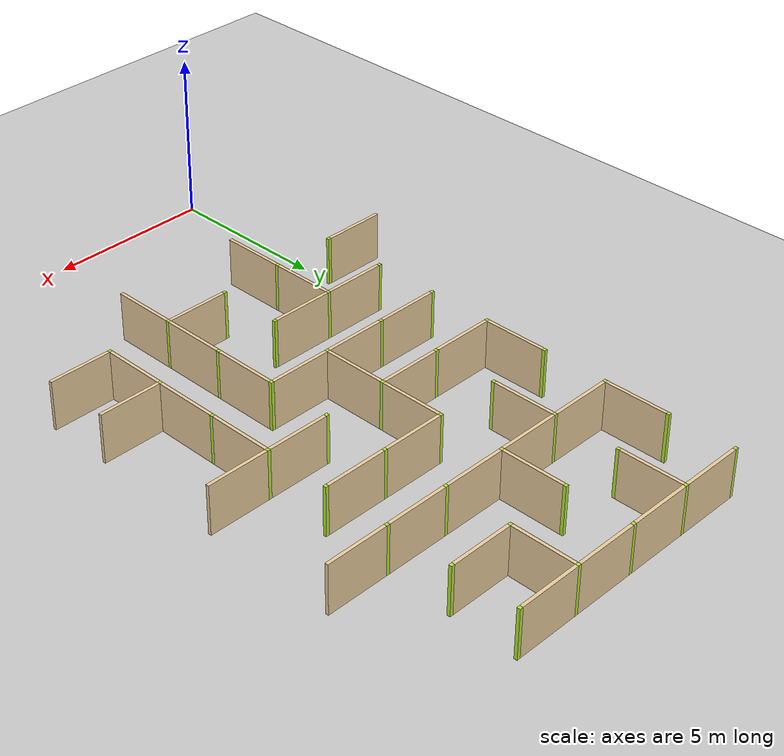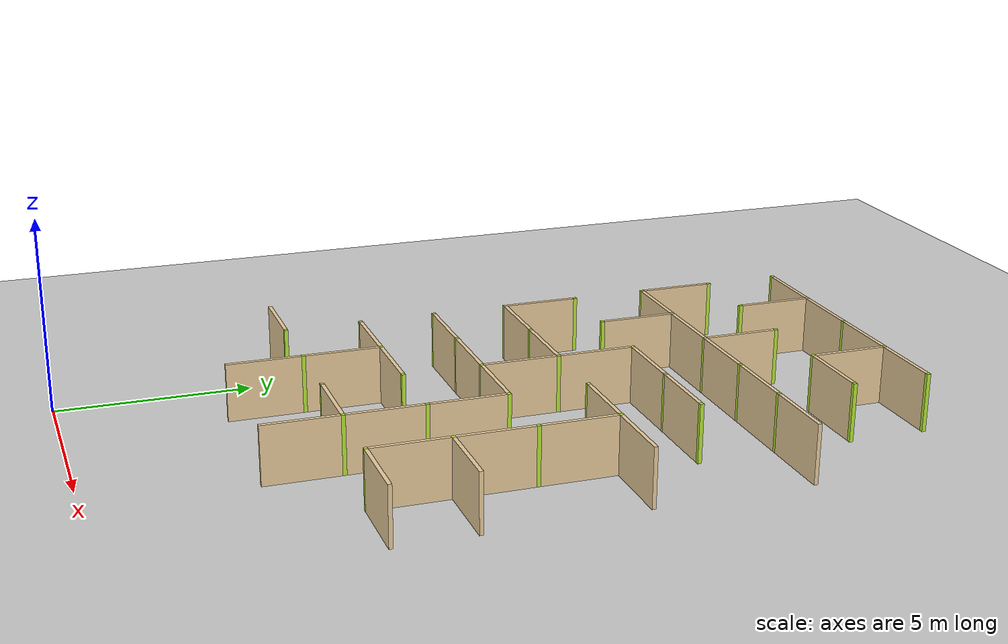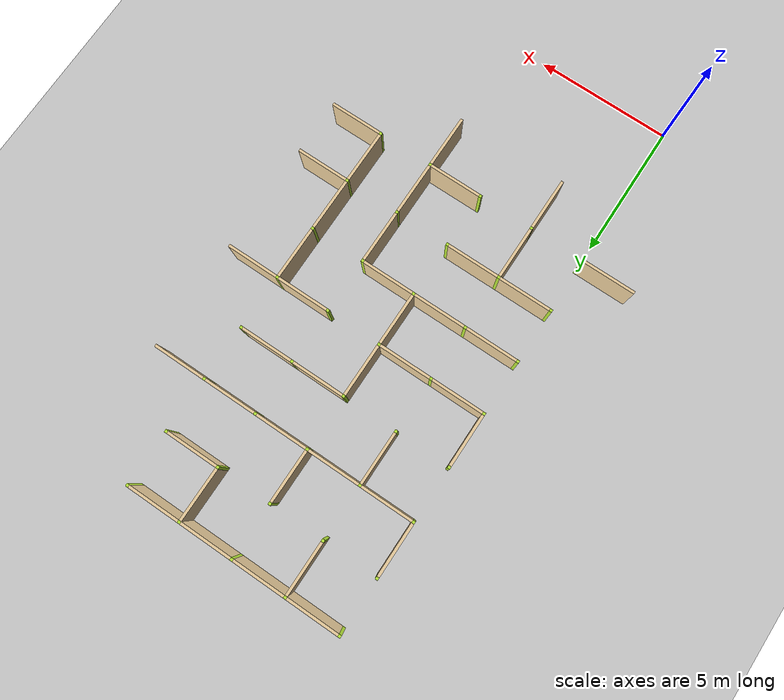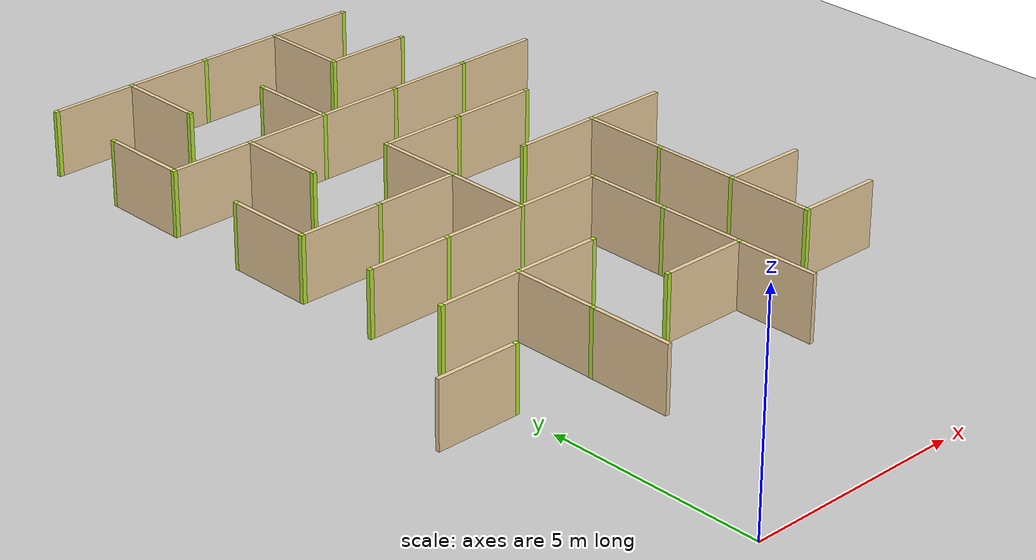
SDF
<sdf version="1.4">
 <world name="maze_world">
  <model name="ground">
   <static>true</static>
   <link name="ground_link">
    <collision name="collision1"><geometry><plane><normal>0 0 1</normal></plane></geometry></collision>
    <visual name="visual1"><geometry><plane><normal>0 0 1</normal><size>100 100</size></plane></geometry></visual>
   </link>
  </model>
  <model name="Untitled">
   <link name="Wall_10_0_h">
    <collision name="Wall_0_Collision">
     <geometry><box><size>1.9 0.1 1.5</size></box></geometry>
     <pose>0 0 0.75 0 -0 0</pose>
    </collision>
    <visual name="Wall_0_Visual">
     <pose>0 0 0.75 0 -0 0</pose>
     <geometry><box><size>1.9 0.1 1.5</size></box></geometry>
     <material>
      <script><uri>file://media/materials/scripts/gazebo.material</uri><name>Gazebo/Grey</name></script>
      <ambient>0.921569 0.807843 0.615686 1</ambient>
     </material>
     <meta><layer>0</layer></meta>
    </visual>
    <pose>1.0 20 0 0 -0 0</pose>
   </link>
   <link name="Joint_0_20">
    <collision name="Wall_2_Collision">
     <geometry><box><size>0.1 0.1 1.5</size></box></geometry>
     <pose>0 0 0.75 0 -0 0</pose>
    </collision>
    <visual name="Wall_2_Visual">
     <pose>0 0 0.75 0 -0 0</pose>
     <geometry><box><size>0.1 0.1 1.5</size></box></geometry>
     <material>
      <script><uri>file://media/materials/scripts/gazebo.material</uri><name>Gazebo/Grey</name></script>
      <ambient>0.721569 0.907843 0.215686 1</ambient>
     </material>
     <meta><layer>0</layer></meta>
    </visual>
    <pose>0 20 0 0 -0 0</pose>
   </link>
   <link name="Wall_11_0_h">
    <collision name="Wall_0_Collision">
     <geometry><box><size>1.9 0.1 1.5</size></box></geometry>
     <pose>0 0 0.75 0 -0 0</pose>
    </collision>
    <visual name="Wall_0_Visual">
     <pose>0 0 0.75 0 -0 0</pose>
     <geometry><box><size>1.9 0.1 1.5</size></box></geometry>
     <material>
      <script><uri>file://media/materials/scripts/gazebo.material</uri><name>Gazebo/Grey</name></script>
      <ambient>0.921569 0.807843 0.615686 1</ambient>
     </material>
     <meta><layer>0</layer></meta>
    </visual>
    <pose>3.0 20 0 0 -0 0</pose>
   </link>
   <link name="Wall_11_0_v">
    <collision name="Wall_0_Collision">
     <geometry><box><size>1.9 0.1 1.5</size></box></geometry>
     <pose>0 0 0.75 0 -0 0</pose>
    </collision>
    <visual name="Wall_0_Visual">
     <pose>0 0 0.75 0 -0 0</pose>
     <geometry><box><size>1.9 0.1 1.5</size></box></geometry>
     <material>
      <script><uri>file://media/materials/scripts/gazebo.material</uri><name>Gazebo/Grey</name></script>
      <ambient>0.921569 0.807843 0.615686 1</ambient>
     </material>
     <meta><layer>0</layer></meta>
    </visual>
    <pose>2 19.0 0 0 -0 1.5708</pose>
   </link>
   <link name="Joint_2_20">
    <collision name="Wall_2_Collision">
     <geometry><box><size>0.1 0.1 1.5</size></box></geometry>
     <pose>0 0 0.75 0 -0 0</pose>
    </collision>
    <visual name="Wall_2_Visual">
     <pose>0 0 0.75 0 -0 0</pose>
     <geometry><box><size>0.1 0.1 1.5</size></box></geometry>
     <material>
      <script><uri>file://media/materials/scripts/gazebo.material</uri><name>Gazebo/Grey</name></script>
      <ambient>0.721569 0.907843 0.215686 1</ambient>
     </material>
     <meta><layer>0</layer></meta>
    </visual>
    <pose>2 20 0 0 -0 0</pose>
   </link>
   <link name="Wall_12_0_h">
    <collision name="Wall_0_Collision">
     <geometry><box><size>1.9 0.1 1.5</size></box></geometry>
     <pose>0 0 0.75 0 -0 0</pose>
    </collision>
    <visual name="Wall_0_Visual">
     <pose>0 0 0.75 0 -0 0</pose>
     <geometry><box><size>1.9 0.1 1.5</size></box></geometry>
     <material>
      <script><uri>file://media/materials/scripts/gazebo.material</uri><name>Gazebo/Grey</name></script>
      <ambient>0.921569 0.807843 0.615686 1</ambient>
     </material>
     <meta><layer>0</layer></meta>
    </visual>
    <pose>5.0 20 0 0 -0 0</pose>
   </link>
   <link name="Joint_4_20">
    <collision name="Wall_2_Collision">
     <geometry><box><size>0.1 0.1 1.5</size></box></geometry>
     <pose>0 0 0.75 0 -0 0</pose>
    </collision>
    <visual name="Wall_2_Visual">
     <pose>0 0 0.75 0 -0 0</pose>
     <geometry><box><size>0.1 0.1 1.5</size></box></geometry>
     <material>
      <script><uri>file://media/materials/scripts/gazebo.material</uri><name>Gazebo/Grey</name></script>
      <ambient>0.721569 0.907843 0.215686 1</ambient>
     </material>
     <meta><layer>0</layer></meta>
    </visual>
    <pose>4 20 0 0 -0 0</pose>
   </link>
   <link name="Wall_13_0_h">
    <collision name="Wall_0_Collision">
     <geometry><box><size>1.9 0.1 1.5</size></box></geometry>
     <pose>0 0 0.75 0 -0 0</pose>
    </collision>
    <visual name="Wall_0_Visual">
     <pose>0 0 0.75 0 -0 0</pose>
     <geometry><box><size>1.9 0.1 1.5</size></box></geometry>
     <material>
      <script><uri>file://media/materials/scripts/gazebo.material</uri><name>Gazebo/Grey</name></script>
      <ambient>0.921569 0.807843 0.615686 1</ambient>
     </material>
     <meta><layer>0</layer></meta>
    </visual>
    <pose>7.0 20 0 0 -0 0</pose>
   </link>
   <link name="Wall_13_0_v">
    <collision name="Wall_0_Collision">
     <geometry><box><size>1.9 0.1 1.5</size></box></geometry>
     <pose>0 0 0.75 0 -0 0</pose>
    </collision>
    <visual name="Wall_0_Visual">
     <pose>0 0 0.75 0 -0 0</pose>
     <geometry><box><size>1.9 0.1 1.5</size></box></geometry>
     <material>
      <script><uri>file://media/materials/scripts/gazebo.material</uri><name>Gazebo/Grey</name></script>
      <ambient>0.921569 0.807843 0.615686 1</ambient>
     </material>
     <meta><layer>0</layer></meta>
    </visual>
    <pose>6 19.0 0 0 -0 1.5708</pose>
   </link>
   <link name="Joint_6_20">
    <collision name="Wall_2_Collision">
     <geometry><box><size>0.1 0.1 1.5</size></box></geometry>
     <pose>0 0 0.75 0 -0 0</pose>
    </collision>
    <visual name="Wall_2_Visual">
     <pose>0 0 0.75 0 -0 0</pose>
     <geometry><box><size>0.1 0.1 1.5</size></box></geometry>
     <material>
      <script><uri>file://media/materials/scripts/gazebo.material</uri><name>Gazebo/Grey</name></script>
      <ambient>0.721569 0.907843 0.215686 1</ambient>
     </material>
     <meta><layer>0</layer></meta>
    </visual>
    <pose>6 20 0 0 -0 0</pose>
   </link>
   <link name="Joint_8_20">
    <collision name="Wall_2_Collision">
     <geometry><box><size>0.1 0.1 1.5</size></box></geometry>
     <pose>0 0 0.75 0 -0 0</pose>
    </collision>
    <visual name="Wall_2_Visual">
     <pose>0 0 0.75 0 -0 0</pose>
     <geometry><box><size>0.1 0.1 1.5</size></box></geometry>
     <material>
      <script><uri>file://media/materials/scripts/gazebo.material</uri><name>Gazebo/Grey</name></script>
      <ambient>0.721569 0.907843 0.215686 1</ambient>
     </material>
     <meta><layer>0</layer></meta>
    </visual>
    <pose>8 20 0 0 -0 0</pose>
   </link>
   <link name="Wall_10_1_v">
    <collision name="Wall_0_Collision">
     <geometry><box><size>1.9 0.1 1.5</size></box></geometry>
     <pose>0 0 0.75 0 -0 0</pose>
    </collision>
    <visual name="Wall_0_Visual">
     <pose>0 0 0.75 0 -0 0</pose>
     <geometry><box><size>1.9 0.1 1.5</size></box></geometry>
     <material>
      <script><uri>file://media/materials/scripts/gazebo.material</uri><name>Gazebo/Grey</name></script>
      <ambient>0.921569 0.807843 0.615686 1</ambient>
     </material>
     <meta><layer>0</layer></meta>
    </visual>
    <pose>0 17.0 0 0 -0 1.5708</pose>
   </link>
   <link name="Joint_0_18">
    <collision name="Wall_2_Collision">
     <geometry><box><size>0.1 0.1 1.5</size></box></geometry>
     <pose>0 0 0.75 0 -0 0</pose>
    </collision>
    <visual name="Wall_2_Visual">
     <pose>0 0 0.75 0 -0 0</pose>
     <geometry><box><size>0.1 0.1 1.5</size></box></geometry>
     <material>
      <script><uri>file://media/materials/scripts/gazebo.material</uri><name>Gazebo/Grey</name></script>
      <ambient>0.721569 0.907843 0.215686 1</ambient>
     </material>
     <meta><layer>0</layer></meta>
    </visual>
    <pose>0 18 0 0 -0 0</pose>
   </link>
   <link name="Joint_2_18">
    <collision name="Wall_2_Collision">
     <geometry><box><size>0.1 0.1 1.5</size></box></geometry>
     <pose>0 0 0.75 0 -0 0</pose>
    </collision>
    <visual name="Wall_2_Visual">
     <pose>0 0 0.75 0 -0 0</pose>
     <geometry><box><size>0.1 0.1 1.5</size></box></geometry>
     <material>
      <script><uri>file://media/materials/scripts/gazebo.material</uri><name>Gazebo/Grey</name></script>
      <ambient>0.721569 0.907843 0.215686 1</ambient>
     </material>
     <meta><layer>0</layer></meta>
    </visual>
    <pose>2 18 0 0 -0 0</pose>
   </link>
   <link name="Wall_12_1_v">
    <collision name="Wall_0_Collision">
     <geometry><box><size>1.9 0.1 1.5</size></box></geometry>
     <pose>0 0 0.75 0 -0 0</pose>
    </collision>
    <visual name="Wall_0_Visual">
     <pose>0 0 0.75 0 -0 0</pose>
     <geometry><box><size>1.9 0.1 1.5</size></box></geometry>
     <material>
      <script><uri>file://media/materials/scripts/gazebo.material</uri><name>Gazebo/Grey</name></script>
      <ambient>0.921569 0.807843 0.615686 1</ambient>
     </material>
     <meta><layer>0</layer></meta>
    </visual>
    <pose>4 17.0 0 0 -0 1.5708</pose>
   </link>
   <link name="Joint_4_18">
    <collision name="Wall_2_Collision">
     <geometry><box><size>0.1 0.1 1.5</size></box></geometry>
     <pose>0 0 0.75 0 -0 0</pose>
    </collision>
    <visual name="Wall_2_Visual">
     <pose>0 0 0.75 0 -0 0</pose>
     <geometry><box><size>0.1 0.1 1.5</size></box></geometry>
     <material>
      <script><uri>file://media/materials/scripts/gazebo.material</uri><name>Gazebo/Grey</name></script>
      <ambient>0.721569 0.907843 0.215686 1</ambient>
     </material>
     <meta><layer>0</layer></meta>
    </visual>
    <pose>4 18 0 0 -0 0</pose>
   </link>
   <link name="Wall_13_1_h">
    <collision name="Wall_0_Collision">
     <geometry><box><size>1.9 0.1 1.5</size></box></geometry>
     <pose>0 0 0.75 0 -0 0</pose>
    </collision>
    <visual name="Wall_0_Visual">
     <pose>0 0 0.75 0 -0 0</pose>
     <geometry><box><size>1.9 0.1 1.5</size></box></geometry>
     <material>
      <script><uri>file://media/materials/scripts/gazebo.material</uri><name>Gazebo/Grey</name></script>
      <ambient>0.921569 0.807843 0.615686 1</ambient>
     </material>
     <meta><layer>0</layer></meta>
    </visual>
    <pose>7.0 18 0 0 -0 0</pose>
   </link>
   <link name="Joint_6_18">
    <collision name="Wall_2_Collision">
     <geometry><box><size>0.1 0.1 1.5</size></box></geometry>
     <pose>0 0 0.75 0 -0 0</pose>
    </collision>
    <visual name="Wall_2_Visual">
     <pose>0 0 0.75 0 -0 0</pose>
     <geometry><box><size>0.1 0.1 1.5</size></box></geometry>
     <material>
      <script><uri>file://media/materials/scripts/gazebo.material</uri><name>Gazebo/Grey</name></script>
      <ambient>0.721569 0.907843 0.215686 1</ambient>
     </material>
     <meta><layer>0</layer></meta>
    </visual>
    <pose>6 18 0 0 -0 0</pose>
   </link>
   <link name="Joint_8_18">
    <collision name="Wall_2_Collision">
     <geometry><box><size>0.1 0.1 1.5</size></box></geometry>
     <pose>0 0 0.75 0 -0 0</pose>
    </collision>
    <visual name="Wall_2_Visual">
     <pose>0 0 0.75 0 -0 0</pose>
     <geometry><box><size>0.1 0.1 1.5</size></box></geometry>
     <material>
      <script><uri>file://media/materials/scripts/gazebo.material</uri><name>Gazebo/Grey</name></script>
      <ambient>0.721569 0.907843 0.215686 1</ambient>
     </material>
     <meta><layer>0</layer></meta>
    </visual>
    <pose>8 18 0 0 -0 0</pose>
   </link>
   <link name="Wall_10_2_h">
    <collision name="Wall_0_Collision">
     <geometry><box><size>1.9 0.1 1.5</size></box></geometry>
     <pose>0 0 0.75 0 -0 0</pose>
    </collision>
    <visual name="Wall_0_Visual">
     <pose>0 0 0.75 0 -0 0</pose>
     <geometry><box><size>1.9 0.1 1.5</size></box></geometry>
     <material>
      <script><uri>file://media/materials/scripts/gazebo.material</uri><name>Gazebo/Grey</name></script>
      <ambient>0.921569 0.807843 0.615686 1</ambient>
     </material>
     <meta><layer>0</layer></meta>
    </visual>
    <pose>1.0 16 0 0 -0 0</pose>
   </link>
   <link name="Joint_0_16">
    <collision name="Wall_2_Collision">
     <geometry><box><size>0.1 0.1 1.5</size></box></geometry>
     <pose>0 0 0.75 0 -0 0</pose>
    </collision>
    <visual name="Wall_2_Visual">
     <pose>0 0 0.75 0 -0 0</pose>
     <geometry><box><size>0.1 0.1 1.5</size></box></geometry>
     <material>
      <script><uri>file://media/materials/scripts/gazebo.material</uri><name>Gazebo/Grey</name></script>
      <ambient>0.721569 0.907843 0.215686 1</ambient>
     </material>
     <meta><layer>0</layer></meta>
    </visual>
    <pose>0 16 0 0 -0 0</pose>
   </link>
   <link name="Wall_11_2_h">
    <collision name="Wall_0_Collision">
     <geometry><box><size>1.9 0.1 1.5</size></box></geometry>
     <pose>0 0 0.75 0 -0 0</pose>
    </collision>
    <visual name="Wall_0_Visual">
     <pose>0 0 0.75 0 -0 0</pose>
     <geometry><box><size>1.9 0.1 1.5</size></box></geometry>
     <material>
      <script><uri>file://media/materials/scripts/gazebo.material</uri><name>Gazebo/Grey</name></script>
      <ambient>0.921569 0.807843 0.615686 1</ambient>
     </material>
     <meta><layer>0</layer></meta>
    </visual>
    <pose>3.0 16 0 0 -0 0</pose>
   </link>
   <link name="Wall_11_2_v">
    <collision name="Wall_0_Collision">
     <geometry><box><size>1.9 0.1 1.5</size></box></geometry>
     <pose>0 0 0.75 0 -0 0</pose>
    </collision>
    <visual name="Wall_0_Visual">
     <pose>0 0 0.75 0 -0 0</pose>
     <geometry><box><size>1.9 0.1 1.5</size></box></geometry>
     <material>
      <script><uri>file://media/materials/scripts/gazebo.material</uri><name>Gazebo/Grey</name></script>
      <ambient>0.921569 0.807843 0.615686 1</ambient>
     </material>
     <meta><layer>0</layer></meta>
    </visual>
    <pose>2 15.0 0 0 -0 1.5708</pose>
   </link>
   <link name="Joint_2_16">
    <collision name="Wall_2_Collision">
     <geometry><box><size>0.1 0.1 1.5</size></box></geometry>
     <pose>0 0 0.75 0 -0 0</pose>
    </collision>
    <visual name="Wall_2_Visual">
     <pose>0 0 0.75 0 -0 0</pose>
     <geometry><box><size>0.1 0.1 1.5</size></box></geometry>
     <material>
      <script><uri>file://media/materials/scripts/gazebo.material</uri><name>Gazebo/Grey</name></script>
      <ambient>0.721569 0.907843 0.215686 1</ambient>
     </material>
     <meta><layer>0</layer></meta>
    </visual>
    <pose>2 16 0 0 -0 0</pose>
   </link>
   <link name="Wall_12_2_h">
    <collision name="Wall_0_Collision">
     <geometry><box><size>1.9 0.1 1.5</size></box></geometry>
     <pose>0 0 0.75 0 -0 0</pose>
    </collision>
    <visual name="Wall_0_Visual">
     <pose>0 0 0.75 0 -0 0</pose>
     <geometry><box><size>1.9 0.1 1.5</size></box></geometry>
     <material>
      <script><uri>file://media/materials/scripts/gazebo.material</uri><name>Gazebo/Grey</name></script>
      <ambient>0.921569 0.807843 0.615686 1</ambient>
     </material>
     <meta><layer>0</layer></meta>
    </visual>
    <pose>5.0 16 0 0 -0 0</pose>
   </link>
   <link name="Joint_4_16">
    <collision name="Wall_2_Collision">
     <geometry><box><size>0.1 0.1 1.5</size></box></geometry>
     <pose>0 0 0.75 0 -0 0</pose>
    </collision>
    <visual name="Wall_2_Visual">
     <pose>0 0 0.75 0 -0 0</pose>
     <geometry><box><size>0.1 0.1 1.5</size></box></geometry>
     <material>
      <script><uri>file://media/materials/scripts/gazebo.material</uri><name>Gazebo/Grey</name></script>
      <ambient>0.721569 0.907843 0.215686 1</ambient>
     </material>
     <meta><layer>0</layer></meta>
    </visual>
    <pose>4 16 0 0 -0 0</pose>
   </link>
   <link name="Wall_13_2_h">
    <collision name="Wall_0_Collision">
     <geometry><box><size>1.9 0.1 1.5</size></box></geometry>
     <pose>0 0 0.75 0 -0 0</pose>
    </collision>
    <visual name="Wall_0_Visual">
     <pose>0 0 0.75 0 -0 0</pose>
     <geometry><box><size>1.9 0.1 1.5</size></box></geometry>
     <material>
      <script><uri>file://media/materials/scripts/gazebo.material</uri><name>Gazebo/Grey</name></script>
      <ambient>0.921569 0.807843 0.615686 1</ambient>
     </material>
     <meta><layer>0</layer></meta>
    </visual>
    <pose>7.0 16 0 0 -0 0</pose>
   </link>
   <link name="Joint_6_16">
    <collision name="Wall_2_Collision">
     <geometry><box><size>0.1 0.1 1.5</size></box></geometry>
     <pose>0 0 0.75 0 -0 0</pose>
    </collision>
    <visual name="Wall_2_Visual">
     <pose>0 0 0.75 0 -0 0</pose>
     <geometry><box><size>0.1 0.1 1.5</size></box></geometry>
     <material>
      <script><uri>file://media/materials/scripts/gazebo.material</uri><name>Gazebo/Grey</name></script>
      <ambient>0.721569 0.907843 0.215686 1</ambient>
     </material>
     <meta><layer>0</layer></meta>
    </visual>
    <pose>6 16 0 0 -0 0</pose>
   </link>
   <link name="Wall_14_2_h">
    <collision name="Wall_0_Collision">
     <geometry><box><size>1.9 0.1 1.5</size></box></geometry>
     <pose>0 0 0.75 0 -0 0</pose>
    </collision>
    <visual name="Wall_0_Visual">
     <pose>0 0 0.75 0 -0 0</pose>
     <geometry><box><size>1.9 0.1 1.5</size></box></geometry>
     <material>
      <script><uri>file://media/materials/scripts/gazebo.material</uri><name>Gazebo/Grey</name></script>
      <ambient>0.921569 0.807843 0.615686 1</ambient>
     </material>
     <meta><layer>0</layer></meta>
    </visual>
    <pose>9.0 16 0 0 -0 0</pose>
   </link>
   <link name="Joint_8_16">
    <collision name="Wall_2_Collision">
     <geometry><box><size>0.1 0.1 1.5</size></box></geometry>
     <pose>0 0 0.75 0 -0 0</pose>
    </collision>
    <visual name="Wall_2_Visual">
     <pose>0 0 0.75 0 -0 0</pose>
     <geometry><box><size>0.1 0.1 1.5</size></box></geometry>
     <material>
      <script><uri>file://media/materials/scripts/gazebo.material</uri><name>Gazebo/Grey</name></script>
      <ambient>0.721569 0.907843 0.215686 1</ambient>
     </material>
     <meta><layer>0</layer></meta>
    </visual>
    <pose>8 16 0 0 -0 0</pose>
   </link>
   <link name="Wall_10_3_v">
    <collision name="Wall_0_Collision">
     <geometry><box><size>1.9 0.1 1.5</size></box></geometry>
     <pose>0 0 0.75 0 -0 0</pose>
    </collision>
    <visual name="Wall_0_Visual">
     <pose>0 0 0.75 0 -0 0</pose>
     <geometry><box><size>1.9 0.1 1.5</size></box></geometry>
     <material>
      <script><uri>file://media/materials/scripts/gazebo.material</uri><name>Gazebo/Grey</name></script>
      <ambient>0.921569 0.807843 0.615686 1</ambient>
     </material>
     <meta><layer>0</layer></meta>
    </visual>
    <pose>0 13.0 0 0 -0 1.5708</pose>
   </link>
   <link name="Joint_0_14">
    <collision name="Wall_2_Collision">
     <geometry><box><size>0.1 0.1 1.5</size></box></geometry>
     <pose>0 0 0.75 0 -0 0</pose>
    </collision>
    <visual name="Wall_2_Visual">
     <pose>0 0 0.75 0 -0 0</pose>
     <geometry><box><size>0.1 0.1 1.5</size></box></geometry>
     <material>
      <script><uri>file://media/materials/scripts/gazebo.material</uri><name>Gazebo/Grey</name></script>
      <ambient>0.721569 0.907843 0.215686 1</ambient>
     </material>
     <meta><layer>0</layer></meta>
    </visual>
    <pose>0 14 0 0 -0 0</pose>
   </link>
   <link name="Joint_2_14">
    <collision name="Wall_2_Collision">
     <geometry><box><size>0.1 0.1 1.5</size></box></geometry>
     <pose>0 0 0.75 0 -0 0</pose>
    </collision>
    <visual name="Wall_2_Visual">
     <pose>0 0 0.75 0 -0 0</pose>
     <geometry><box><size>0.1 0.1 1.5</size></box></geometry>
     <material>
      <script><uri>file://media/materials/scripts/gazebo.material</uri><name>Gazebo/Grey</name></script>
      <ambient>0.721569 0.907843 0.215686 1</ambient>
     </material>
     <meta><layer>0</layer></meta>
    </visual>
    <pose>2 14 0 0 -0 0</pose>
   </link>
   <link name="Wall_12_3_h">
    <collision name="Wall_0_Collision">
     <geometry><box><size>1.9 0.1 1.5</size></box></geometry>
     <pose>0 0 0.75 0 -0 0</pose>
    </collision>
    <visual name="Wall_0_Visual">
     <pose>0 0 0.75 0 -0 0</pose>
     <geometry><box><size>1.9 0.1 1.5</size></box></geometry>
     <material>
      <script><uri>file://media/materials/scripts/gazebo.material</uri><name>Gazebo/Grey</name></script>
      <ambient>0.921569 0.807843 0.615686 1</ambient>
     </material>
     <meta><layer>0</layer></meta>
    </visual>
    <pose>5.0 14 0 0 -0 0</pose>
   </link>
   <link name="Wall_12_3_v">
    <collision name="Wall_0_Collision">
     <geometry><box><size>1.9 0.1 1.5</size></box></geometry>
     <pose>0 0 0.75 0 -0 0</pose>
    </collision>
    <visual name="Wall_0_Visual">
     <pose>0 0 0.75 0 -0 0</pose>
     <geometry><box><size>1.9 0.1 1.5</size></box></geometry>
     <material>
      <script><uri>file://media/materials/scripts/gazebo.material</uri><name>Gazebo/Grey</name></script>
      <ambient>0.921569 0.807843 0.615686 1</ambient>
     </material>
     <meta><layer>0</layer></meta>
    </visual>
    <pose>4 13.0 0 0 -0 1.5708</pose>
   </link>
   <link name="Joint_4_14">
    <collision name="Wall_2_Collision">
     <geometry><box><size>0.1 0.1 1.5</size></box></geometry>
     <pose>0 0 0.75 0 -0 0</pose>
    </collision>
    <visual name="Wall_2_Visual">
     <pose>0 0 0.75 0 -0 0</pose>
     <geometry><box><size>0.1 0.1 1.5</size></box></geometry>
     <material>
      <script><uri>file://media/materials/scripts/gazebo.material</uri><name>Gazebo/Grey</name></script>
      <ambient>0.721569 0.907843 0.215686 1</ambient>
     </material>
     <meta><layer>0</layer></meta>
    </visual>
    <pose>4 14 0 0 -0 0</pose>
   </link>
   <link name="Wall_13_3_h">
    <collision name="Wall_0_Collision">
     <geometry><box><size>1.9 0.1 1.5</size></box></geometry>
     <pose>0 0 0.75 0 -0 0</pose>
    </collision>
    <visual name="Wall_0_Visual">
     <pose>0 0 0.75 0 -0 0</pose>
     <geometry><box><size>1.9 0.1 1.5</size></box></geometry>
     <material>
      <script><uri>file://media/materials/scripts/gazebo.material</uri><name>Gazebo/Grey</name></script>
      <ambient>0.921569 0.807843 0.615686 1</ambient>
     </material>
     <meta><layer>0</layer></meta>
    </visual>
    <pose>7.0 14 0 0 -0 0</pose>
   </link>
   <link name="Joint_6_14">
    <collision name="Wall_2_Collision">
     <geometry><box><size>0.1 0.1 1.5</size></box></geometry>
     <pose>0 0 0.75 0 -0 0</pose>
    </collision>
    <visual name="Wall_2_Visual">
     <pose>0 0 0.75 0 -0 0</pose>
     <geometry><box><size>0.1 0.1 1.5</size></box></geometry>
     <material>
      <script><uri>file://media/materials/scripts/gazebo.material</uri><name>Gazebo/Grey</name></script>
      <ambient>0.721569 0.907843 0.215686 1</ambient>
     </material>
     <meta><layer>0</layer></meta>
    </visual>
    <pose>6 14 0 0 -0 0</pose>
   </link>
   <link name="Joint_8_14">
    <collision name="Wall_2_Collision">
     <geometry><box><size>0.1 0.1 1.5</size></box></geometry>
     <pose>0 0 0.75 0 -0 0</pose>
    </collision>
    <visual name="Wall_2_Visual">
     <pose>0 0 0.75 0 -0 0</pose>
     <geometry><box><size>0.1 0.1 1.5</size></box></geometry>
     <material>
      <script><uri>file://media/materials/scripts/gazebo.material</uri><name>Gazebo/Grey</name></script>
      <ambient>0.721569 0.907843 0.215686 1</ambient>
     </material>
     <meta><layer>0</layer></meta>
    </visual>
    <pose>8 14 0 0 -0 0</pose>
   </link>
   <link name="Wall_10_4_h">
    <collision name="Wall_0_Collision">
     <geometry><box><size>1.9 0.1 1.5</size></box></geometry>
     <pose>0 0 0.75 0 -0 0</pose>
    </collision>
    <visual name="Wall_0_Visual">
     <pose>0 0 0.75 0 -0 0</pose>
     <geometry><box><size>1.9 0.1 1.5</size></box></geometry>
     <material>
      <script><uri>file://media/materials/scripts/gazebo.material</uri><name>Gazebo/Grey</name></script>
      <ambient>0.921569 0.807843 0.615686 1</ambient>
     </material>
     <meta><layer>0</layer></meta>
    </visual>
    <pose>1.0 12 0 0 -0 0</pose>
   </link>
   <link name="Joint_0_12">
    <collision name="Wall_2_Collision">
     <geometry><box><size>0.1 0.1 1.5</size></box></geometry>
     <pose>0 0 0.75 0 -0 0</pose>
    </collision>
    <visual name="Wall_2_Visual">
     <pose>0 0 0.75 0 -0 0</pose>
     <geometry><box><size>0.1 0.1 1.5</size></box></geometry>
     <material>
      <script><uri>file://media/materials/scripts/gazebo.material</uri><name>Gazebo/Grey</name></script>
      <ambient>0.721569 0.907843 0.215686 1</ambient>
     </material>
     <meta><layer>0</layer></meta>
    </visual>
    <pose>0 12 0 0 -0 0</pose>
   </link>
   <link name="Wall_11_4_h">
    <collision name="Wall_0_Collision">
     <geometry><box><size>1.9 0.1 1.5</size></box></geometry>
     <pose>0 0 0.75 0 -0 0</pose>
    </collision>
    <visual name="Wall_0_Visual">
     <pose>0 0 0.75 0 -0 0</pose>
     <geometry><box><size>1.9 0.1 1.5</size></box></geometry>
     <material>
      <script><uri>file://media/materials/scripts/gazebo.material</uri><name>Gazebo/Grey</name></script>
      <ambient>0.921569 0.807843 0.615686 1</ambient>
     </material>
     <meta><layer>0</layer></meta>
    </visual>
    <pose>3.0 12 0 0 -0 0</pose>
   </link>
   <link name="Joint_2_12">
    <collision name="Wall_2_Collision">
     <geometry><box><size>0.1 0.1 1.5</size></box></geometry>
     <pose>0 0 0.75 0 -0 0</pose>
    </collision>
    <visual name="Wall_2_Visual">
     <pose>0 0 0.75 0 -0 0</pose>
     <geometry><box><size>0.1 0.1 1.5</size></box></geometry>
     <material>
      <script><uri>file://media/materials/scripts/gazebo.material</uri><name>Gazebo/Grey</name></script>
      <ambient>0.721569 0.907843 0.215686 1</ambient>
     </material>
     <meta><layer>0</layer></meta>
    </visual>
    <pose>2 12 0 0 -0 0</pose>
   </link>
   <link name="Wall_12_4_v">
    <collision name="Wall_0_Collision">
     <geometry><box><size>1.9 0.1 1.5</size></box></geometry>
     <pose>0 0 0.75 0 -0 0</pose>
    </collision>
    <visual name="Wall_0_Visual">
     <pose>0 0 0.75 0 -0 0</pose>
     <geometry><box><size>1.9 0.1 1.5</size></box></geometry>
     <material>
      <script><uri>file://media/materials/scripts/gazebo.material</uri><name>Gazebo/Grey</name></script>
      <ambient>0.921569 0.807843 0.615686 1</ambient>
     </material>
     <meta><layer>0</layer></meta>
    </visual>
    <pose>4 11.0 0 0 -0 1.5708</pose>
   </link>
   <link name="Joint_4_12">
    <collision name="Wall_2_Collision">
     <geometry><box><size>0.1 0.1 1.5</size></box></geometry>
     <pose>0 0 0.75 0 -0 0</pose>
    </collision>
    <visual name="Wall_2_Visual">
     <pose>0 0 0.75 0 -0 0</pose>
     <geometry><box><size>0.1 0.1 1.5</size></box></geometry>
     <material>
      <script><uri>file://media/materials/scripts/gazebo.material</uri><name>Gazebo/Grey</name></script>
      <ambient>0.721569 0.907843 0.215686 1</ambient>
     </material>
     <meta><layer>0</layer></meta>
    </visual>
    <pose>4 12 0 0 -0 0</pose>
   </link>
   <link name="Wall_13_4_h">
    <collision name="Wall_0_Collision">
     <geometry><box><size>1.9 0.1 1.5</size></box></geometry>
     <pose>0 0 0.75 0 -0 0</pose>
    </collision>
    <visual name="Wall_0_Visual">
     <pose>0 0 0.75 0 -0 0</pose>
     <geometry><box><size>1.9 0.1 1.5</size></box></geometry>
     <material>
      <script><uri>file://media/materials/scripts/gazebo.material</uri><name>Gazebo/Grey</name></script>
      <ambient>0.921569 0.807843 0.615686 1</ambient>
     </material>
     <meta><layer>0</layer></meta>
    </visual>
    <pose>7.0 12 0 0 -0 0</pose>
   </link>
   <link name="Joint_6_12">
    <collision name="Wall_2_Collision">
     <geometry><box><size>0.1 0.1 1.5</size></box></geometry>
     <pose>0 0 0.75 0 -0 0</pose>
    </collision>
    <visual name="Wall_2_Visual">
     <pose>0 0 0.75 0 -0 0</pose>
     <geometry><box><size>0.1 0.1 1.5</size></box></geometry>
     <material>
      <script><uri>file://media/materials/scripts/gazebo.material</uri><name>Gazebo/Grey</name></script>
      <ambient>0.721569 0.907843 0.215686 1</ambient>
     </material>
     <meta><layer>0</layer></meta>
    </visual>
    <pose>6 12 0 0 -0 0</pose>
   </link>
   <link name="Wall_14_4_h">
    <collision name="Wall_0_Collision">
     <geometry><box><size>1.9 0.1 1.5</size></box></geometry>
     <pose>0 0 0.75 0 -0 0</pose>
    </collision>
    <visual name="Wall_0_Visual">
     <pose>0 0 0.75 0 -0 0</pose>
     <geometry><box><size>1.9 0.1 1.5</size></box></geometry>
     <material>
      <script><uri>file://media/materials/scripts/gazebo.material</uri><name>Gazebo/Grey</name></script>
      <ambient>0.921569 0.807843 0.615686 1</ambient>
     </material>
     <meta><layer>0</layer></meta>
    </visual>
    <pose>9.0 12 0 0 -0 0</pose>
   </link>
   <link name="Wall_14_4_v">
    <collision name="Wall_0_Collision">
     <geometry><box><size>1.9 0.1 1.5</size></box></geometry>
     <pose>0 0 0.75 0 -0 0</pose>
    </collision>
    <visual name="Wall_0_Visual">
     <pose>0 0 0.75 0 -0 0</pose>
     <geometry><box><size>1.9 0.1 1.5</size></box></geometry>
     <material>
      <script><uri>file://media/materials/scripts/gazebo.material</uri><name>Gazebo/Grey</name></script>
      <ambient>0.921569 0.807843 0.615686 1</ambient>
     </material>
     <meta><layer>0</layer></meta>
    </visual>
    <pose>8 11.0 0 0 -0 1.5708</pose>
   </link>
   <link name="Joint_8_12">
    <collision name="Wall_2_Collision">
     <geometry><box><size>0.1 0.1 1.5</size></box></geometry>
     <pose>0 0 0.75 0 -0 0</pose>
    </collision>
    <visual name="Wall_2_Visual">
     <pose>0 0 0.75 0 -0 0</pose>
     <geometry><box><size>0.1 0.1 1.5</size></box></geometry>
     <material>
      <script><uri>file://media/materials/scripts/gazebo.material</uri><name>Gazebo/Grey</name></script>
      <ambient>0.721569 0.907843 0.215686 1</ambient>
     </material>
     <meta><layer>0</layer></meta>
    </visual>
    <pose>8 12 0 0 -0 0</pose>
   </link>
   <link name="Wall_10_5_h">
    <collision name="Wall_0_Collision">
     <geometry><box><size>1.9 0.1 1.5</size></box></geometry>
     <pose>0 0 0.75 0 -0 0</pose>
    </collision>
    <visual name="Wall_0_Visual">
     <pose>0 0 0.75 0 -0 0</pose>
     <geometry><box><size>1.9 0.1 1.5</size></box></geometry>
     <material>
      <script><uri>file://media/materials/scripts/gazebo.material</uri><name>Gazebo/Grey</name></script>
      <ambient>0.921569 0.807843 0.615686 1</ambient>
     </material>
     <meta><layer>0</layer></meta>
    </visual>
    <pose>1.0 10 0 0 -0 0</pose>
   </link>
   <link name="Joint_0_10">
    <collision name="Wall_2_Collision">
     <geometry><box><size>0.1 0.1 1.5</size></box></geometry>
     <pose>0 0 0.75 0 -0 0</pose>
    </collision>
    <visual name="Wall_2_Visual">
     <pose>0 0 0.75 0 -0 0</pose>
     <geometry><box><size>0.1 0.1 1.5</size></box></geometry>
     <material>
      <script><uri>file://media/materials/scripts/gazebo.material</uri><name>Gazebo/Grey</name></script>
      <ambient>0.721569 0.907843 0.215686 1</ambient>
     </material>
     <meta><layer>0</layer></meta>
    </visual>
    <pose>0 10 0 0 -0 0</pose>
   </link>
   <link name="Wall_11_5_h">
    <collision name="Wall_0_Collision">
     <geometry><box><size>1.9 0.1 1.5</size></box></geometry>
     <pose>0 0 0.75 0 -0 0</pose>
    </collision>
    <visual name="Wall_0_Visual">
     <pose>0 0 0.75 0 -0 0</pose>
     <geometry><box><size>1.9 0.1 1.5</size></box></geometry>
     <material>
      <script><uri>file://media/materials/scripts/gazebo.material</uri><name>Gazebo/Grey</name></script>
      <ambient>0.921569 0.807843 0.615686 1</ambient>
     </material>
     <meta><layer>0</layer></meta>
    </visual>
    <pose>3.0 10 0 0 -0 0</pose>
   </link>
   <link name="Joint_2_10">
    <collision name="Wall_2_Collision">
     <geometry><box><size>0.1 0.1 1.5</size></box></geometry>
     <pose>0 0 0.75 0 -0 0</pose>
    </collision>
    <visual name="Wall_2_Visual">
     <pose>0 0 0.75 0 -0 0</pose>
     <geometry><box><size>0.1 0.1 1.5</size></box></geometry>
     <material>
      <script><uri>file://media/materials/scripts/gazebo.material</uri><name>Gazebo/Grey</name></script>
      <ambient>0.721569 0.907843 0.215686 1</ambient>
     </material>
     <meta><layer>0</layer></meta>
    </visual>
    <pose>2 10 0 0 -0 0</pose>
   </link>
   <link name="Wall_12_5_h">
    <collision name="Wall_0_Collision">
     <geometry><box><size>1.9 0.1 1.5</size></box></geometry>
     <pose>0 0 0.75 0 -0 0</pose>
    </collision>
    <visual name="Wall_0_Visual">
     <pose>0 0 0.75 0 -0 0</pose>
     <geometry><box><size>1.9 0.1 1.5</size></box></geometry>
     <material>
      <script><uri>file://media/materials/scripts/gazebo.material</uri><name>Gazebo/Grey</name></script>
      <ambient>0.921569 0.807843 0.615686 1</ambient>
     </material>
     <meta><layer>0</layer></meta>
    </visual>
    <pose>5.0 10 0 0 -0 0</pose>
   </link>
   <link name="Joint_4_10">
    <collision name="Wall_2_Collision">
     <geometry><box><size>0.1 0.1 1.5</size></box></geometry>
     <pose>0 0 0.75 0 -0 0</pose>
    </collision>
    <visual name="Wall_2_Visual">
     <pose>0 0 0.75 0 -0 0</pose>
     <geometry><box><size>0.1 0.1 1.5</size></box></geometry>
     <material>
      <script><uri>file://media/materials/scripts/gazebo.material</uri><name>Gazebo/Grey</name></script>
      <ambient>0.721569 0.907843 0.215686 1</ambient>
     </material>
     <meta><layer>0</layer></meta>
    </visual>
    <pose>4 10 0 0 -0 0</pose>
   </link>
   <link name="Wall_13_5_v">
    <collision name="Wall_0_Collision">
     <geometry><box><size>1.9 0.1 1.5</size></box></geometry>
     <pose>0 0 0.75 0 -0 0</pose>
    </collision>
    <visual name="Wall_0_Visual">
     <pose>0 0 0.75 0 -0 0</pose>
     <geometry><box><size>1.9 0.1 1.5</size></box></geometry>
     <material>
      <script><uri>file://media/materials/scripts/gazebo.material</uri><name>Gazebo/Grey</name></script>
      <ambient>0.921569 0.807843 0.615686 1</ambient>
     </material>
     <meta><layer>0</layer></meta>
    </visual>
    <pose>6 9.0 0 0 -0 1.5708</pose>
   </link>
   <link name="Joint_6_10">
    <collision name="Wall_2_Collision">
     <geometry><box><size>0.1 0.1 1.5</size></box></geometry>
     <pose>0 0 0.75 0 -0 0</pose>
    </collision>
    <visual name="Wall_2_Visual">
     <pose>0 0 0.75 0 -0 0</pose>
     <geometry><box><size>0.1 0.1 1.5</size></box></geometry>
     <material>
      <script><uri>file://media/materials/scripts/gazebo.material</uri><name>Gazebo/Grey</name></script>
      <ambient>0.721569 0.907843 0.215686 1</ambient>
     </material>
     <meta><layer>0</layer></meta>
    </visual>
    <pose>6 10 0 0 -0 0</pose>
   </link>
   <link name="Wall_14_5_v">
    <collision name="Wall_0_Collision">
     <geometry><box><size>1.9 0.1 1.5</size></box></geometry>
     <pose>0 0 0.75 0 -0 0</pose>
    </collision>
    <visual name="Wall_0_Visual">
     <pose>0 0 0.75 0 -0 0</pose>
     <geometry><box><size>1.9 0.1 1.5</size></box></geometry>
     <material>
      <script><uri>file://media/materials/scripts/gazebo.material</uri><name>Gazebo/Grey</name></script>
      <ambient>0.921569 0.807843 0.615686 1</ambient>
     </material>
     <meta><layer>0</layer></meta>
    </visual>
    <pose>8 9.0 0 0 -0 1.5708</pose>
   </link>
   <link name="Joint_8_10">
    <collision name="Wall_2_Collision">
     <geometry><box><size>0.1 0.1 1.5</size></box></geometry>
     <pose>0 0 0.75 0 -0 0</pose>
    </collision>
    <visual name="Wall_2_Visual">
     <pose>0 0 0.75 0 -0 0</pose>
     <geometry><box><size>0.1 0.1 1.5</size></box></geometry>
     <material>
      <script><uri>file://media/materials/scripts/gazebo.material</uri><name>Gazebo/Grey</name></script>
      <ambient>0.721569 0.907843 0.215686 1</ambient>
     </material>
     <meta><layer>0</layer></meta>
    </visual>
    <pose>8 10 0 0 -0 0</pose>
   </link>
   <link name="Wall_10_6_h">
    <collision name="Wall_0_Collision">
     <geometry><box><size>1.9 0.1 1.5</size></box></geometry>
     <pose>0 0 0.75 0 -0 0</pose>
    </collision>
    <visual name="Wall_0_Visual">
     <pose>0 0 0.75 0 -0 0</pose>
     <geometry><box><size>1.9 0.1 1.5</size></box></geometry>
     <material>
      <script><uri>file://media/materials/scripts/gazebo.material</uri><name>Gazebo/Grey</name></script>
      <ambient>0.921569 0.807843 0.615686 1</ambient>
     </material>
     <meta><layer>0</layer></meta>
    </visual>
    <pose>1.0 8 0 0 -0 0</pose>
   </link>
   <link name="Joint_0_8">
    <collision name="Wall_2_Collision">
     <geometry><box><size>0.1 0.1 1.5</size></box></geometry>
     <pose>0 0 0.75 0 -0 0</pose>
    </collision>
    <visual name="Wall_2_Visual">
     <pose>0 0 0.75 0 -0 0</pose>
     <geometry><box><size>0.1 0.1 1.5</size></box></geometry>
     <material>
      <script><uri>file://media/materials/scripts/gazebo.material</uri><name>Gazebo/Grey</name></script>
      <ambient>0.721569 0.907843 0.215686 1</ambient>
     </material>
     <meta><layer>0</layer></meta>
    </visual>
    <pose>0 8 0 0 -0 0</pose>
   </link>
   <link name="Wall_11_6_h">
    <collision name="Wall_0_Collision">
     <geometry><box><size>1.9 0.1 1.5</size></box></geometry>
     <pose>0 0 0.75 0 -0 0</pose>
    </collision>
    <visual name="Wall_0_Visual">
     <pose>0 0 0.75 0 -0 0</pose>
     <geometry><box><size>1.9 0.1 1.5</size></box></geometry>
     <material>
      <script><uri>file://media/materials/scripts/gazebo.material</uri><name>Gazebo/Grey</name></script>
      <ambient>0.921569 0.807843 0.615686 1</ambient>
     </material>
     <meta><layer>0</layer></meta>
    </visual>
    <pose>3.0 8 0 0 -0 0</pose>
   </link>
   <link name="Wall_11_6_v">
    <collision name="Wall_0_Collision">
     <geometry><box><size>1.9 0.1 1.5</size></box></geometry>
     <pose>0 0 0.75 0 -0 0</pose>
    </collision>
    <visual name="Wall_0_Visual">
     <pose>0 0 0.75 0 -0 0</pose>
     <geometry><box><size>1.9 0.1 1.5</size></box></geometry>
     <material>
      <script><uri>file://media/materials/scripts/gazebo.material</uri><name>Gazebo/Grey</name></script>
      <ambient>0.921569 0.807843 0.615686 1</ambient>
     </material>
     <meta><layer>0</layer></meta>
    </visual>
    <pose>2 7.0 0 0 -0 1.5708</pose>
   </link>
   <link name="Joint_2_8">
    <collision name="Wall_2_Collision">
     <geometry><box><size>0.1 0.1 1.5</size></box></geometry>
     <pose>0 0 0.75 0 -0 0</pose>
    </collision>
    <visual name="Wall_2_Visual">
     <pose>0 0 0.75 0 -0 0</pose>
     <geometry><box><size>0.1 0.1 1.5</size></box></geometry>
     <material>
      <script><uri>file://media/materials/scripts/gazebo.material</uri><name>Gazebo/Grey</name></script>
      <ambient>0.721569 0.907843 0.215686 1</ambient>
     </material>
     <meta><layer>0</layer></meta>
    </visual>
    <pose>2 8 0 0 -0 0</pose>
   </link>
   <link name="Joint_4_8">
    <collision name="Wall_2_Collision">
     <geometry><box><size>0.1 0.1 1.5</size></box></geometry>
     <pose>0 0 0.75 0 -0 0</pose>
    </collision>
    <visual name="Wall_2_Visual">
     <pose>0 0 0.75 0 -0 0</pose>
     <geometry><box><size>0.1 0.1 1.5</size></box></geometry>
     <material>
      <script><uri>file://media/materials/scripts/gazebo.material</uri><name>Gazebo/Grey</name></script>
      <ambient>0.721569 0.907843 0.215686 1</ambient>
     </material>
     <meta><layer>0</layer></meta>
    </visual>
    <pose>4 8 0 0 -0 0</pose>
   </link>
   <link name="Wall_13_6_v">
    <collision name="Wall_0_Collision">
     <geometry><box><size>1.9 0.1 1.5</size></box></geometry>
     <pose>0 0 0.75 0 -0 0</pose>
    </collision>
    <visual name="Wall_0_Visual">
     <pose>0 0 0.75 0 -0 0</pose>
     <geometry><box><size>1.9 0.1 1.5</size></box></geometry>
     <material>
      <script><uri>file://media/materials/scripts/gazebo.material</uri><name>Gazebo/Grey</name></script>
      <ambient>0.921569 0.807843 0.615686 1</ambient>
     </material>
     <meta><layer>0</layer></meta>
    </visual>
    <pose>6 7.0 0 0 -0 1.5708</pose>
   </link>
   <link name="Joint_6_8">
    <collision name="Wall_2_Collision">
     <geometry><box><size>0.1 0.1 1.5</size></box></geometry>
     <pose>0 0 0.75 0 -0 0</pose>
    </collision>
    <visual name="Wall_2_Visual">
     <pose>0 0 0.75 0 -0 0</pose>
     <geometry><box><size>0.1 0.1 1.5</size></box></geometry>
     <material>
      <script><uri>file://media/materials/scripts/gazebo.material</uri><name>Gazebo/Grey</name></script>
      <ambient>0.721569 0.907843 0.215686 1</ambient>
     </material>
     <meta><layer>0</layer></meta>
    </visual>
    <pose>6 8 0 0 -0 0</pose>
   </link>
   <link name="Wall_14_6_h">
    <collision name="Wall_0_Collision">
     <geometry><box><size>1.9 0.1 1.5</size></box></geometry>
     <pose>0 0 0.75 0 -0 0</pose>
    </collision>
    <visual name="Wall_0_Visual">
     <pose>0 0 0.75 0 -0 0</pose>
     <geometry><box><size>1.9 0.1 1.5</size></box></geometry>
     <material>
      <script><uri>file://media/materials/scripts/gazebo.material</uri><name>Gazebo/Grey</name></script>
      <ambient>0.921569 0.807843 0.615686 1</ambient>
     </material>
     <meta><layer>0</layer></meta>
    </visual>
    <pose>9.0 8 0 0 -0 0</pose>
   </link>
   <link name="Wall_14_6_v">
    <collision name="Wall_0_Collision">
     <geometry><box><size>1.9 0.1 1.5</size></box></geometry>
     <pose>0 0 0.75 0 -0 0</pose>
    </collision>
    <visual name="Wall_0_Visual">
     <pose>0 0 0.75 0 -0 0</pose>
     <geometry><box><size>1.9 0.1 1.5</size></box></geometry>
     <material>
      <script><uri>file://media/materials/scripts/gazebo.material</uri><name>Gazebo/Grey</name></script>
      <ambient>0.921569 0.807843 0.615686 1</ambient>
     </material>
     <meta><layer>0</layer></meta>
    </visual>
    <pose>8 7.0 0 0 -0 1.5708</pose>
   </link>
   <link name="Joint_8_8">
    <collision name="Wall_2_Collision">
     <geometry><box><size>0.1 0.1 1.5</size></box></geometry>
     <pose>0 0 0.75 0 -0 0</pose>
    </collision>
    <visual name="Wall_2_Visual">
     <pose>0 0 0.75 0 -0 0</pose>
     <geometry><box><size>0.1 0.1 1.5</size></box></geometry>
     <material>
      <script><uri>file://media/materials/scripts/gazebo.material</uri><name>Gazebo/Grey</name></script>
      <ambient>0.721569 0.907843 0.215686 1</ambient>
     </material>
     <meta><layer>0</layer></meta>
    </visual>
    <pose>8 8 0 0 -0 0</pose>
   </link>
   <link name="Wall_9_7_h">
    <collision name="Wall_0_Collision">
     <geometry><box><size>1.9 0.1 1.5</size></box></geometry>
     <pose>0 0 0.75 0 -0 0</pose>
    </collision>
    <visual name="Wall_0_Visual">
     <pose>0 0 0.75 0 -0 0</pose>
     <geometry><box><size>1.9 0.1 1.5</size></box></geometry>
     <material>
      <script><uri>file://media/materials/scripts/gazebo.material</uri><name>Gazebo/Grey</name></script>
      <ambient>0.921569 0.807843 0.615686 1</ambient>
     </material>
     <meta><layer>0</layer></meta>
    </visual>
    <pose>-1.0 6 0 0 -0 0</pose>
   </link>
   <link name="Joint_0_6">
    <collision name="Wall_2_Collision">
     <geometry><box><size>0.1 0.1 1.5</size></box></geometry>
     <pose>0 0 0.75 0 -0 0</pose>
    </collision>
    <visual name="Wall_2_Visual">
     <pose>0 0 0.75 0 -0 0</pose>
     <geometry><box><size>0.1 0.1 1.5</size></box></geometry>
     <material>
      <script><uri>file://media/materials/scripts/gazebo.material</uri><name>Gazebo/Grey</name></script>
      <ambient>0.721569 0.907843 0.215686 1</ambient>
     </material>
     <meta><layer>0</layer></meta>
    </visual>
    <pose>0 6 0 0 -0 0</pose>
   </link>
   <link name="Wall_11_7_v">
    <collision name="Wall_0_Collision">
     <geometry><box><size>1.9 0.1 1.5</size></box></geometry>
     <pose>0 0 0.75 0 -0 0</pose>
    </collision>
    <visual name="Wall_0_Visual">
     <pose>0 0 0.75 0 -0 0</pose>
     <geometry><box><size>1.9 0.1 1.5</size></box></geometry>
     <material>
      <script><uri>file://media/materials/scripts/gazebo.material</uri><name>Gazebo/Grey</name></script>
      <ambient>0.921569 0.807843 0.615686 1</ambient>
     </material>
     <meta><layer>0</layer></meta>
    </visual>
    <pose>2 5.0 0 0 -0 1.5708</pose>
   </link>
   <link name="Joint_2_6">
    <collision name="Wall_2_Collision">
     <geometry><box><size>0.1 0.1 1.5</size></box></geometry>
     <pose>0 0 0.75 0 -0 0</pose>
    </collision>
    <visual name="Wall_2_Visual">
     <pose>0 0 0.75 0 -0 0</pose>
     <geometry><box><size>0.1 0.1 1.5</size></box></geometry>
     <material>
      <script><uri>file://media/materials/scripts/gazebo.material</uri><name>Gazebo/Grey</name></script>
      <ambient>0.721569 0.907843 0.215686 1</ambient>
     </material>
     <meta><layer>0</layer></meta>
    </visual>
    <pose>2 6 0 0 -0 0</pose>
   </link>
   <link name="Wall_12_7_h">
    <collision name="Wall_0_Collision">
     <geometry><box><size>1.9 0.1 1.5</size></box></geometry>
     <pose>0 0 0.75 0 -0 0</pose>
    </collision>
    <visual name="Wall_0_Visual">
     <pose>0 0 0.75 0 -0 0</pose>
     <geometry><box><size>1.9 0.1 1.5</size></box></geometry>
     <material>
      <script><uri>file://media/materials/scripts/gazebo.material</uri><name>Gazebo/Grey</name></script>
      <ambient>0.921569 0.807843 0.615686 1</ambient>
     </material>
     <meta><layer>0</layer></meta>
    </visual>
    <pose>5.0 6 0 0 -0 0</pose>
   </link>
   <link name="Joint_4_6">
    <collision name="Wall_2_Collision">
     <geometry><box><size>0.1 0.1 1.5</size></box></geometry>
     <pose>0 0 0.75 0 -0 0</pose>
    </collision>
    <visual name="Wall_2_Visual">
     <pose>0 0 0.75 0 -0 0</pose>
     <geometry><box><size>0.1 0.1 1.5</size></box></geometry>
     <material>
      <script><uri>file://media/materials/scripts/gazebo.material</uri><name>Gazebo/Grey</name></script>
      <ambient>0.721569 0.907843 0.215686 1</ambient>
     </material>
     <meta><layer>0</layer></meta>
    </visual>
    <pose>4 6 0 0 -0 0</pose>
   </link>
   <link name="Wall_13_7_v">
    <collision name="Wall_0_Collision">
     <geometry><box><size>1.9 0.1 1.5</size></box></geometry>
     <pose>0 0 0.75 0 -0 0</pose>
    </collision>
    <visual name="Wall_0_Visual">
     <pose>0 0 0.75 0 -0 0</pose>
     <geometry><box><size>1.9 0.1 1.5</size></box></geometry>
     <material>
      <script><uri>file://media/materials/scripts/gazebo.material</uri><name>Gazebo/Grey</name></script>
      <ambient>0.921569 0.807843 0.615686 1</ambient>
     </material>
     <meta><layer>0</layer></meta>
    </visual>
    <pose>6 5.0 0 0 -0 1.5708</pose>
   </link>
   <link name="Joint_6_6">
    <collision name="Wall_2_Collision">
     <geometry><box><size>0.1 0.1 1.5</size></box></geometry>
     <pose>0 0 0.75 0 -0 0</pose>
    </collision>
    <visual name="Wall_2_Visual">
     <pose>0 0 0.75 0 -0 0</pose>
     <geometry><box><size>0.1 0.1 1.5</size></box></geometry>
     <material>
      <script><uri>file://media/materials/scripts/gazebo.material</uri><name>Gazebo/Grey</name></script>
      <ambient>0.721569 0.907843 0.215686 1</ambient>
     </material>
     <meta><layer>0</layer></meta>
    </visual>
    <pose>6 6 0 0 -0 0</pose>
   </link>
   <link name="Wall_14_7_h">
    <collision name="Wall_0_Collision">
     <geometry><box><size>1.9 0.1 1.5</size></box></geometry>
     <pose>0 0 0.75 0 -0 0</pose>
    </collision>
    <visual name="Wall_0_Visual">
     <pose>0 0 0.75 0 -0 0</pose>
     <geometry><box><size>1.9 0.1 1.5</size></box></geometry>
     <material>
      <script><uri>file://media/materials/scripts/gazebo.material</uri><name>Gazebo/Grey</name></script>
      <ambient>0.921569 0.807843 0.615686 1</ambient>
     </material>
     <meta><layer>0</layer></meta>
    </visual>
    <pose>9.0 6 0 0 -0 0</pose>
   </link>
   <link name="Joint_8_6">
    <collision name="Wall_2_Collision">
     <geometry><box><size>0.1 0.1 1.5</size></box></geometry>
     <pose>0 0 0.75 0 -0 0</pose>
    </collision>
    <visual name="Wall_2_Visual">
     <pose>0 0 0.75 0 -0 0</pose>
     <geometry><box><size>0.1 0.1 1.5</size></box></geometry>
     <material>
      <script><uri>file://media/materials/scripts/gazebo.material</uri><name>Gazebo/Grey</name></script>
      <ambient>0.721569 0.907843 0.215686 1</ambient>
     </material>
     <meta><layer>0</layer></meta>
    </visual>
    <pose>8 6 0 0 -0 0</pose>
   </link>
   <static>1</static>
  </model>
 </world>
</sdf>
